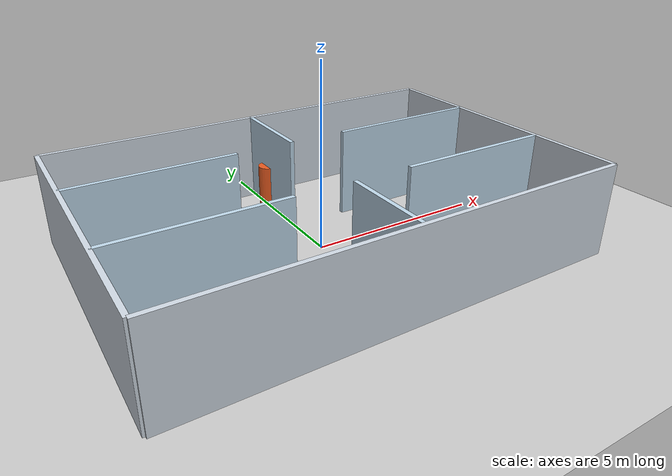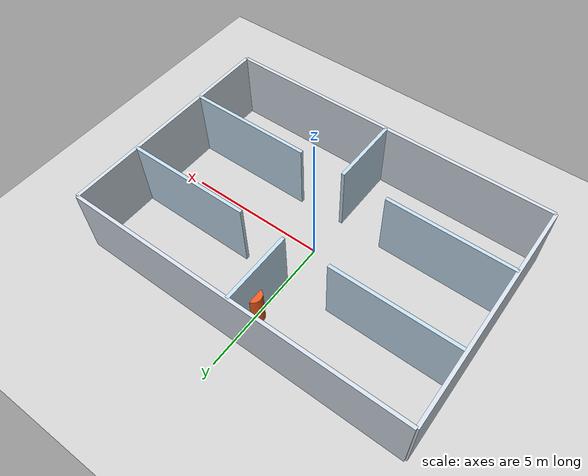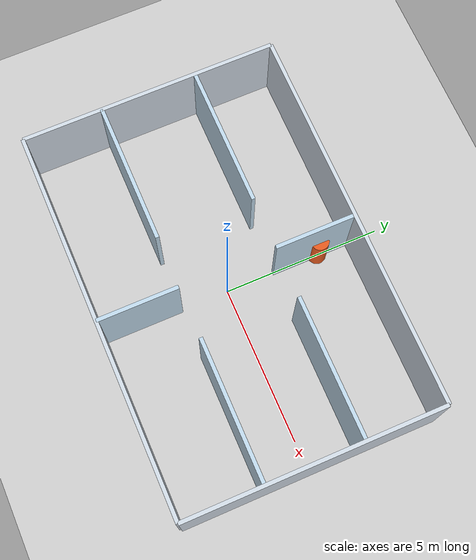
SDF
<?xml version="1.0"?>
<sdf version="1.6">
  <world name="vbot_hospital">
    <!-- 提供 /gazebo/set_entity_state，用于控制模拟行人横穿走廊。 -->
    <plugin name="gazebo_ros_state" filename="libgazebo_ros_state.so">
      <ros><namespace>/gazebo</namespace></ros>
      <update_rate>20.0</update_rate>
    </plugin>
    <gravity>0 0 -9.81</gravity>
    <physics name="fast" type="ode">
      <real_time_update_rate>500</real_time_update_rate>
      <max_step_size>0.002</max_step_size>
    </physics>
    <scene><ambient>0.7 0.7 0.7 1</ambient><background>0.92 0.94 0.96 1</background></scene>
    <include><uri>model://sun</uri></include>
    <include><uri>model://ground_plane</uri></include>

    <!-- 12×8 米医院环境，包含中央走廊、诊室和门洞。 -->
    <model name="hospital_walls">
      <static>true</static>
      <link name="walls">
        <visual name="north"><pose>0 4 1.25 0 0 0</pose><geometry><box><size>12 0.12 2.5</size></box></geometry><material><ambient>0.82 0.86 0.90 1</ambient></material></visual>
        <collision name="north_c"><pose>0 4 1.25 0 0 0</pose><geometry><box><size>12 0.12 2.5</size></box></geometry></collision>
        <visual name="south"><pose>0 -4 1.25 0 0 0</pose><geometry><box><size>12 0.12 2.5</size></box></geometry><material><ambient>0.82 0.86 0.90 1</ambient></material></visual>
        <collision name="south_c"><pose>0 -4 1.25 0 0 0</pose><geometry><box><size>12 0.12 2.5</size></box></geometry></collision>
        <visual name="west"><pose>-6 0 1.25 0 0 0</pose><geometry><box><size>0.12 8 2.5</size></box></geometry><material><ambient>0.82 0.86 0.90 1</ambient></material></visual>
        <collision name="west_c"><pose>-6 0 1.25 0 0 0</pose><geometry><box><size>0.12 8 2.5</size></box></geometry></collision>
        <visual name="east"><pose>6 0 1.25 0 0 0</pose><geometry><box><size>0.12 8 2.5</size></box></geometry><material><ambient>0.82 0.86 0.90 1</ambient></material></visual>
        <collision name="east_c"><pose>6 0 1.25 0 0 0</pose><geometry><box><size>0.12 8 2.5</size></box></geometry></collision>

        <visual name="upper_left"><pose>-3.8 1.5 1.25 0 0 0</pose><geometry><box><size>4.4 0.12 2.5</size></box></geometry><material><ambient>0.75 0.85 0.92 1</ambient></material></visual>
        <collision name="upper_left_c"><pose>-3.8 1.5 1.25 0 0 0</pose><geometry><box><size>4.4 0.12 2.5</size></box></geometry></collision>
        <visual name="upper_right"><pose>3.8 1.5 1.25 0 0 0</pose><geometry><box><size>4.4 0.12 2.5</size></box></geometry><material><ambient>0.75 0.85 0.92 1</ambient></material></visual>
        <collision name="upper_right_c"><pose>3.8 1.5 1.25 0 0 0</pose><geometry><box><size>4.4 0.12 2.5</size></box></geometry></collision>
        <visual name="lower_left"><pose>-3.8 -1.5 1.25 0 0 0</pose><geometry><box><size>4.4 0.12 2.5</size></box></geometry><material><ambient>0.75 0.85 0.92 1</ambient></material></visual>
        <collision name="lower_left_c"><pose>-3.8 -1.5 1.25 0 0 0</pose><geometry><box><size>4.4 0.12 2.5</size></box></geometry></collision>
        <visual name="lower_right"><pose>3.8 -1.5 1.25 0 0 0</pose><geometry><box><size>4.4 0.12 2.5</size></box></geometry><material><ambient>0.75 0.85 0.92 1</ambient></material></visual>
        <collision name="lower_right_c"><pose>3.8 -1.5 1.25 0 0 0</pose><geometry><box><size>4.4 0.12 2.5</size></box></geometry></collision>

        <visual name="room_divider_n"><pose>0 2.75 1.25 0 0 0</pose><geometry><box><size>0.12 2.5 2.5</size></box></geometry><material><ambient>0.75 0.85 0.92 1</ambient></material></visual>
        <collision name="room_divider_n_c"><pose>0 2.75 1.25 0 0 0</pose><geometry><box><size>0.12 2.5 2.5</size></box></geometry></collision>
        <visual name="room_divider_s"><pose>0 -2.75 1.25 0 0 0</pose><geometry><box><size>0.12 2.5 2.5</size></box></geometry><material><ambient>0.75 0.85 0.92 1</ambient></material></visual>
        <collision name="room_divider_s_c"><pose>0 -2.75 1.25 0 0 0</pose><geometry><box><size>0.12 2.5 2.5</size></box></geometry></collision>
      </link>
    </model>

    <model name="dynamic_obstacle">
      <!-- 静态建图时停在走廊外；启用动态障碍测试后再由节点移入通道。 -->
      <pose>0 3 0.65 0 0 0</pose>
      <link name="body">
        <inertial><mass>60</mass><inertia><ixx>5</ixx><iyy>5</iyy><izz>5</izz></inertia></inertial>
        <visual name="visual"><geometry><cylinder><radius>0.28</radius><length>1.3</length></cylinder></geometry><material><ambient>0.9 0.35 0.12 1</ambient></material></visual>
        <collision name="collision"><geometry><cylinder><radius>0.28</radius><length>1.3</length></cylinder></geometry></collision>
      </link>
    </model>
  </world>
</sdf>
